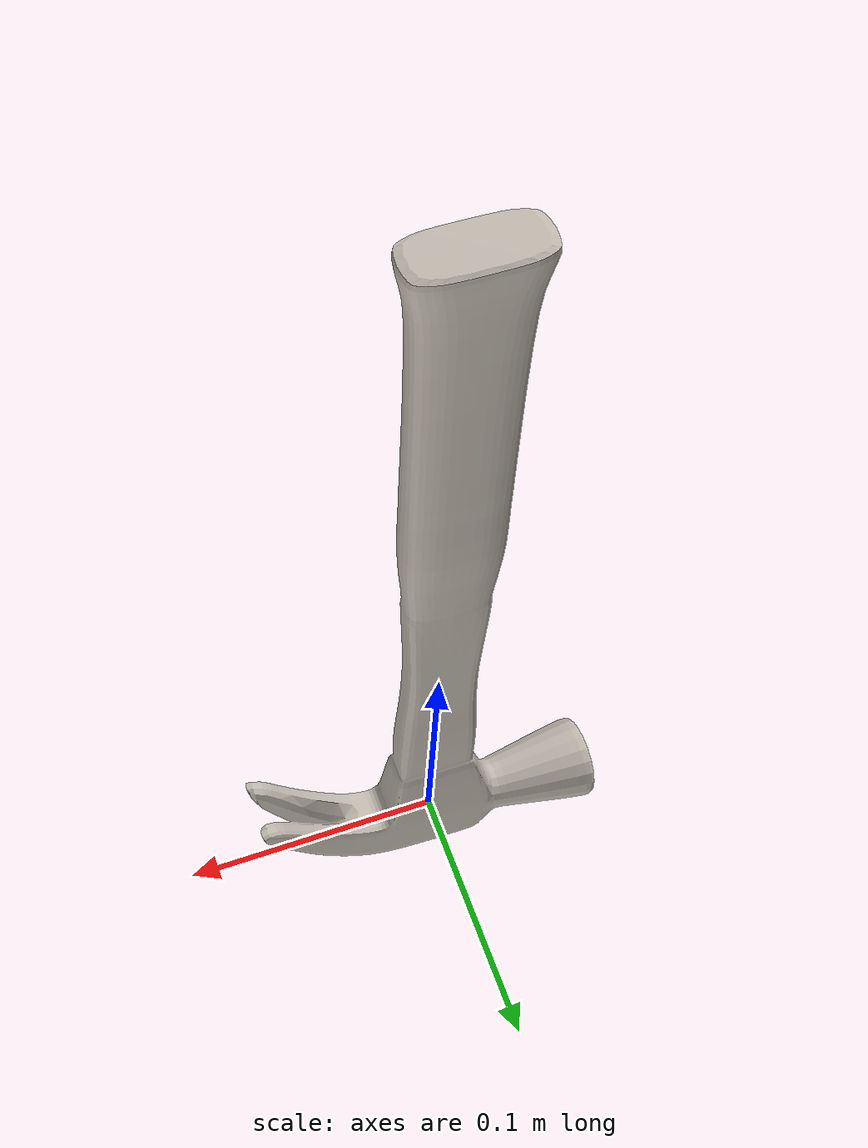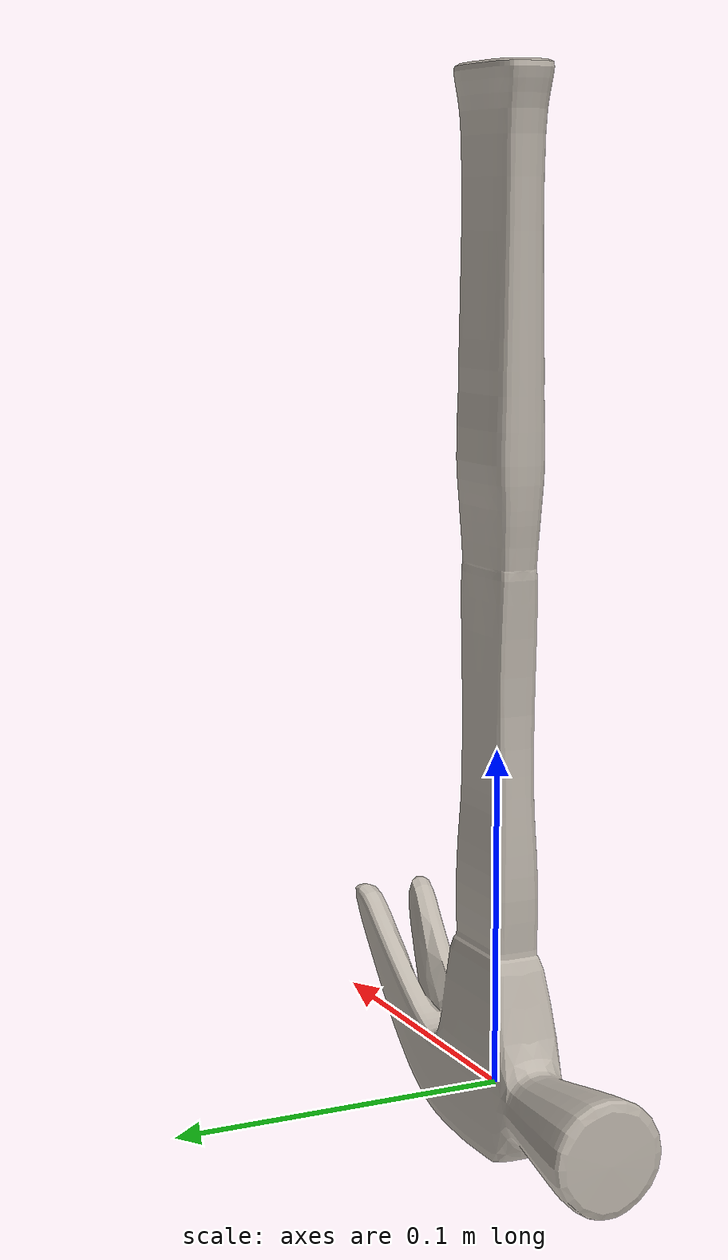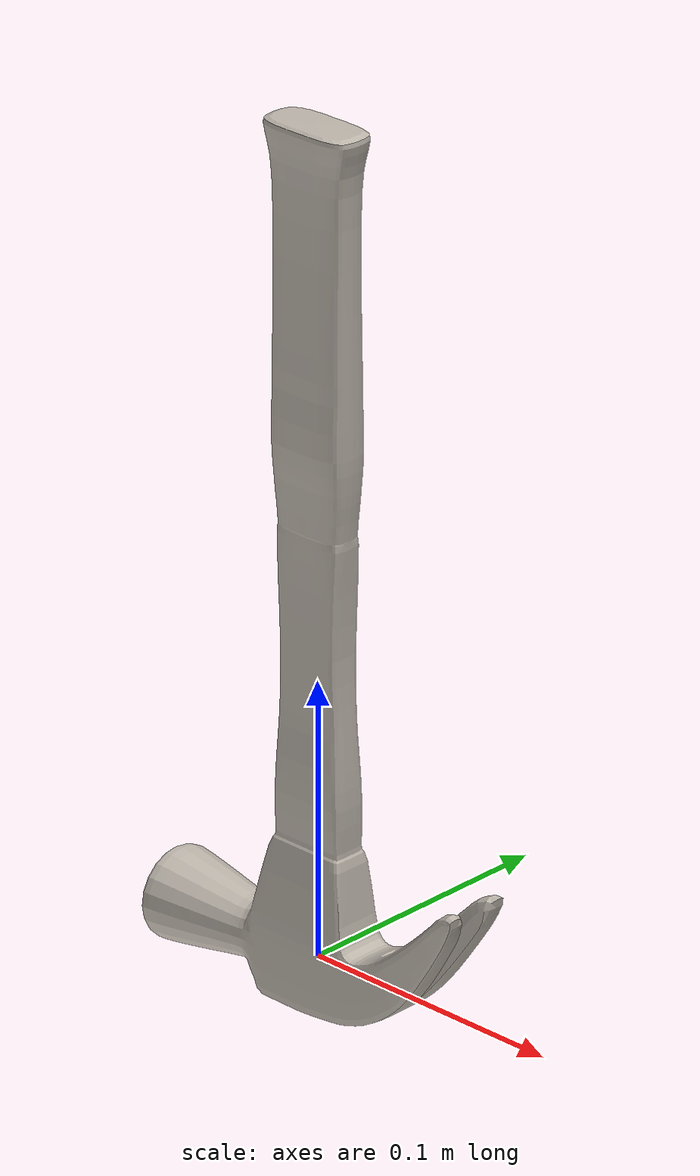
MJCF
<mujoco model="hammer_model">
    <compiler angle="radian" meshdir="environment_parts/" />

      <!-- Define the assets -->
    <asset>
         <texture name="hammer_png" file="environment_parts/hammer/assets_hammer/hammer.png" type="2d"/>
        <material name="hammer_mat" texture="hammer_png" specular="1" shininess="1"/>
        <mesh name="hammer_mesh" file="hammer/assets_hammer/Hammer.obj" scale="0.02 0.02 0.02"/>
    </asset>

    <!-- Define the world body -->
    <worldbody>
        <!-- Load the hammer mesh and place it at the origin -->
        <body name="hammer" pos="0 0 0.13">
            <geom type="mesh" mesh="hammer_mesh" material="hammer_mat"/>
        </body>
    </worldbody>
</mujoco>
